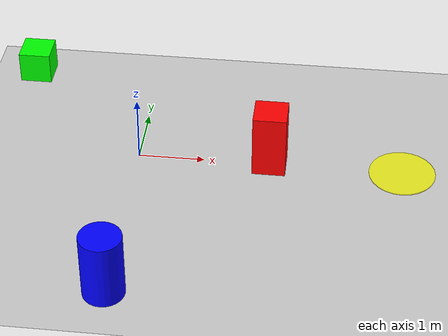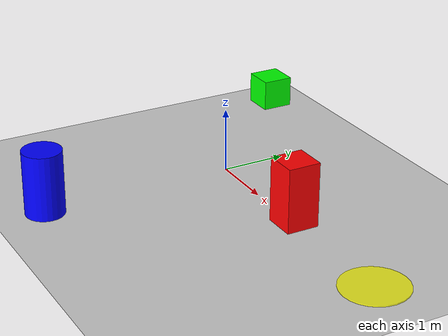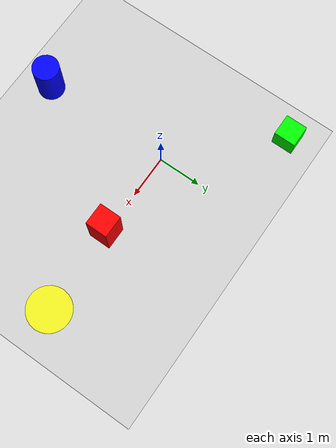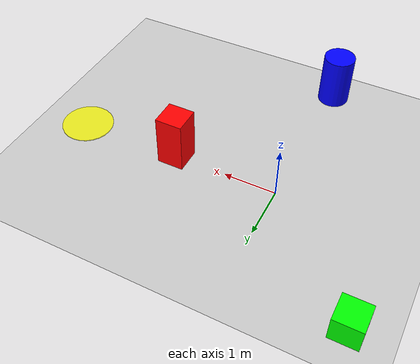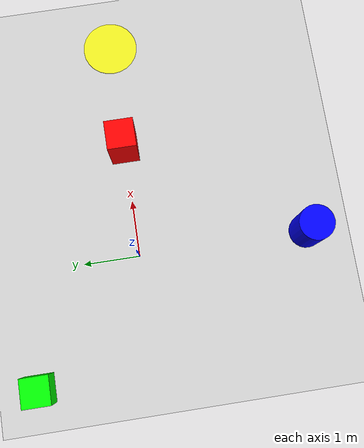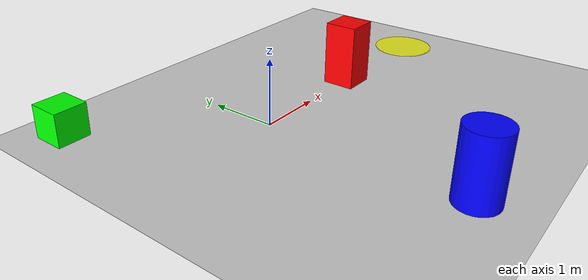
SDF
<?xml version="1.0" ?>
<sdf version="1.8">
    <world name="turtlebot_world">

        <!-- Physics Engine -->
        <physics name="1ms" type="ignored">
            <max_step_size>0.001</max_step_size>
            <real_time_factor>1.0</real_time_factor>
        </physics>

        <!-- Plugins -->
        <plugin filename="ignition-gazebo-physics-system" name="ignition::gazebo::systems::Physics"></plugin>
        <plugin filename="ignition-gazebo-user-commands-system" name="ignition::gazebo::systems::UserCommands"></plugin>
        <plugin filename="ignition-gazebo-scene-broadcaster-system" name="ignition::gazebo::systems::SceneBroadcaster"></plugin>
        <plugin filename="ignition-gazebo-sensors-system" name="ignition::gazebo::systems::Sensors">
            <render_engine>ogre</render_engine>
        </plugin>
        <plugin filename="ignition-gazebo-imu-system" name="ignition::gazebo::systems::Imu"></plugin>

        <!-- GUI -->
        <gui fullscreen="0">
            <!-- 3D scene -->
            <plugin filename="MinimalScene" name="3D View">
                <ignition-gui>
                    <title>3D View</title>
                    <property type="bool" key="showTitleBar">false</property>
                    <property type="string" key="state">docked</property>
                </ignition-gui>
                <engine>ogre</engine>
                <scene>scene</scene>
                <ambient_light>0.4 0.4 0.4</ambient_light>
                <background_color>0.8 0.8 0.8</background_color>
                <camera_pose>-2 0 2 0 0.5 0</camera_pose>
            </plugin>

            <!-- World control -->
            <plugin filename="WorldControl" name="World control">
                <ignition-gui>
                    <title>World control</title>
                    <property type="bool" key="showTitleBar">false</property>
                    <property type="bool" key="resizable">false</property>
                    <property type="double" key="height">72</property>
                    <property type="double" key="width">121</property>
                    <property type="double" key="z">1</property>
                    <property type="string" key="state">floating</property>
                    <anchors target="3D View">
                        <line own="left" target="left"/>
                        <line own="bottom" target="bottom"/>
                    </anchors>
                </ignition-gui>
                <play_pause>true</play_pause>
                <step>true</step>
                <start_paused>false</start_paused>
            </plugin>

            <!-- World stats -->
            <plugin filename="WorldStats" name="World stats">
                <ignition-gui>
                    <title>World stats</title>
                    <property type="bool" key="showTitleBar">false</property>
                    <property type="bool" key="resizable">false</property>
                    <property type="double" key="height">110</property>
                    <property type="double" key="width">290</property>
                    <property type="double" key="z">1</property>
                    <property type="string" key="state">floating</property>
                    <anchors target="3D View">
                        <line own="right" target="right"/>
                        <line own="bottom" target="bottom"/>
                    </anchors>
                </ignition-gui>
                <sim_time>true</sim_time>
                <real_time>true</real_time>
                <real_time_factor>true</real_time_factor>
                <iterations>true</iterations>
            </plugin>

            <!-- Entity tree -->
            <plugin filename="EntityTree" name="Entity tree"></plugin>

            <!-- Transform control -->
            <plugin filename="TransformControl" name="Transform control"></plugin>

            <!-- Image display -->
            <plugin filename="ImageDisplay" name="Image Display">
                <ignition-gui>
                    <property key="state" type="string">floating</property>
                    <property key="width" type="double">350</property>
                    <property key="height" type="double">315</property>
                    <property key="showTitleBar" type="bool">true</property>
                </ignition-gui>
                <topic>camera/image_raw</topic>
            </plugin>

            <!-- Visualize LiDAR -->
            <!-- Disabled: causes "Lidar pointer is not set" errors without proper entity configuration -->
        </gui>

        <!-- Lighting -->
        <light type="directional" name="sun">
            <cast_shadows>true</cast_shadows>
            <pose>0 0 10 0 0 0</pose>
            <diffuse>0.8 0.8 0.8 1</diffuse>
            <specular>0.2 0.2 0.2 1</specular>
            <attenuation>
                <range>1000</range>
                <constant>0.9</constant>
                <linear>0.01</linear>
                <quadratic>0.001</quadratic>
            </attenuation>
            <direction>-0.5 0.1 -0.9</direction>
        </light>

        <!-- Ground Plane -->
        <model name="ground_plane">
            <static>true</static>
            <link name="link">
                <collision name="collision">
                    <geometry>
                        <plane>
                            <normal>0 0 1</normal>
                        </plane>
                    </geometry>
                </collision>
                <visual name="visual">
                    <geometry>
                        <plane>
                            <normal>0 0 1</normal>
                            <size>100 100</size>
                        </plane>
                    </geometry>
                    <material>
                        <ambient>0.8 0.8 0.8 1</ambient>
                        <diffuse>0.8 0.8 0.8 1</diffuse>
                        <specular>0.8 0.8 0.8 1</specular>
                    </material>
                </visual>
            </link>
        </model>

        <!-- Obstacles for testing -->
        <model name="box_obstacle_1">
            <pose>2 0 0.5 0 0 0</pose>
            <static>true</static>
            <link name="link">
                <collision name="collision">
                    <geometry>
                        <box>
                            <size>0.5 0.5 1.0</size>
                        </box>
                    </geometry>
                </collision>
                <visual name="visual">
                    <geometry>
                        <box>
                            <size>0.5 0.5 1.0</size>
                        </box>
                    </geometry>
                    <material>
                        <ambient>1 0 0 1</ambient>
                        <diffuse>1 0 0 1</diffuse>
                        <specular>0.5 0.5 0.5 1</specular>
                    </material>
                </visual>
            </link>
        </model>

        <model name="box_obstacle_2">
            <pose>-2 2 0.25 0 0 0</pose>
            <static>true</static>
            <link name="link">
                <collision name="collision">
                    <geometry>
                        <box>
                            <size>0.5 0.5 0.5</size>
                        </box>
                    </geometry>
                </collision>
                <visual name="visual">
                    <geometry>
                        <box>
                            <size>0.5 0.5 0.5</size>
                        </box>
                    </geometry>
                    <material>
                        <ambient>0 1 0 1</ambient>
                        <diffuse>0 1 0 1</diffuse>
                        <specular>0.5 0.5 0.5 1</specular>
                    </material>
                </visual>
            </link>
        </model>

        <model name="cylinder_obstacle">
            <pose>0 -3 0.5 0 0 0</pose>
            <static>true</static>
            <link name="link">
                <collision name="collision">
                    <geometry>
                        <cylinder>
                            <radius>0.3</radius>
                            <length>1.0</length>
                        </cylinder>
                    </geometry>
                </collision>
                <visual name="visual">
                    <geometry>
                        <cylinder>
                            <radius>0.3</radius>
                            <length>1.0</length>
                        </cylinder>
                    </geometry>
                    <material>
                        <ambient>0 0 1 1</ambient>
                        <diffuse>0 0 1 1</diffuse>
                        <specular>0.5 0.5 0.5 1</specular>
                    </material>
                </visual>
            </link>
        </model>

        <!-- Target zone for catapult (optional) -->
        <model name="target">
            <pose>4 0 0.01 0 0 0</pose>
            <static>true</static>
            <link name="link">
                <visual name="visual">
                    <geometry>
                        <cylinder>
                            <radius>0.5</radius>
                            <length>0.02</length>
                        </cylinder>
                    </geometry>
                    <material>
                        <ambient>1 1 0 0.8</ambient>
                        <diffuse>1 1 0 0.8</diffuse>
                        <specular>0.5 0.5 0.5 1</specular>
                    </material>
                </visual>
            </link>
        </model>

    </world>
</sdf>
